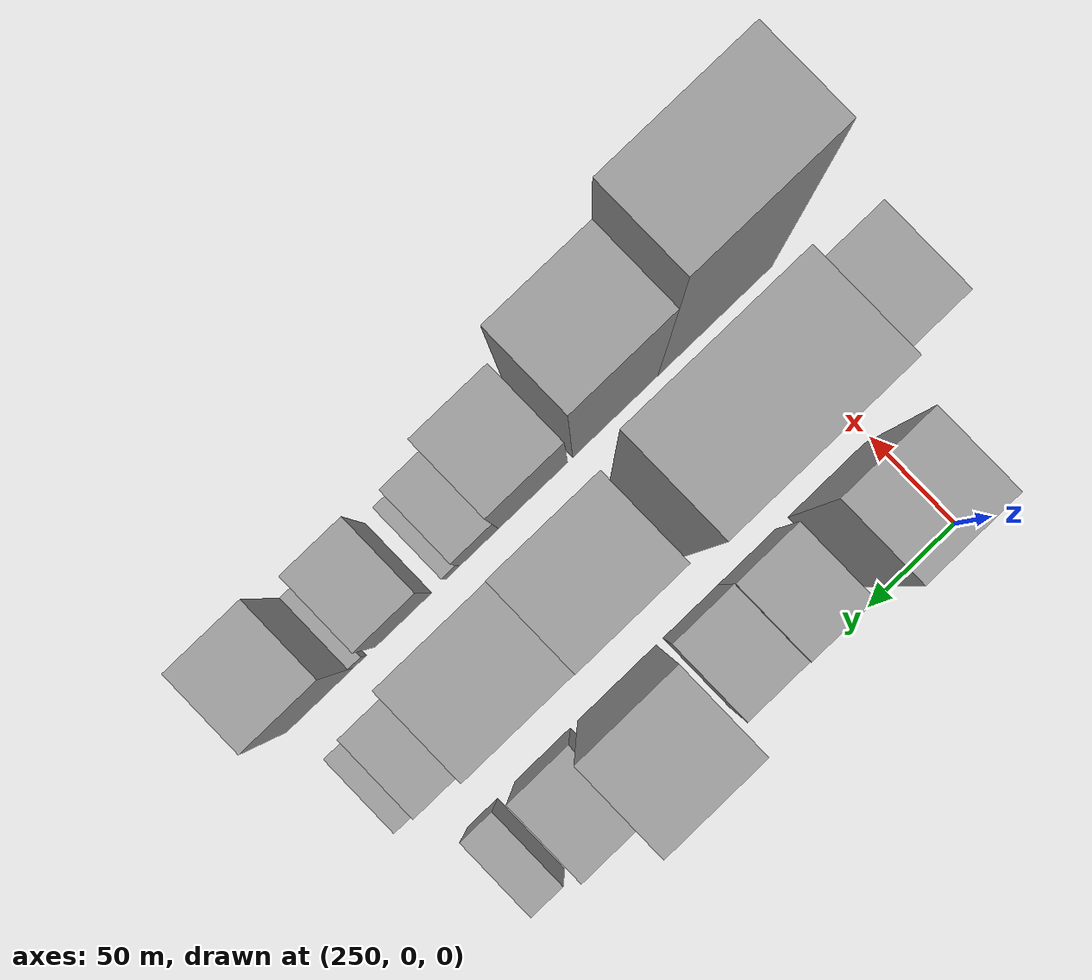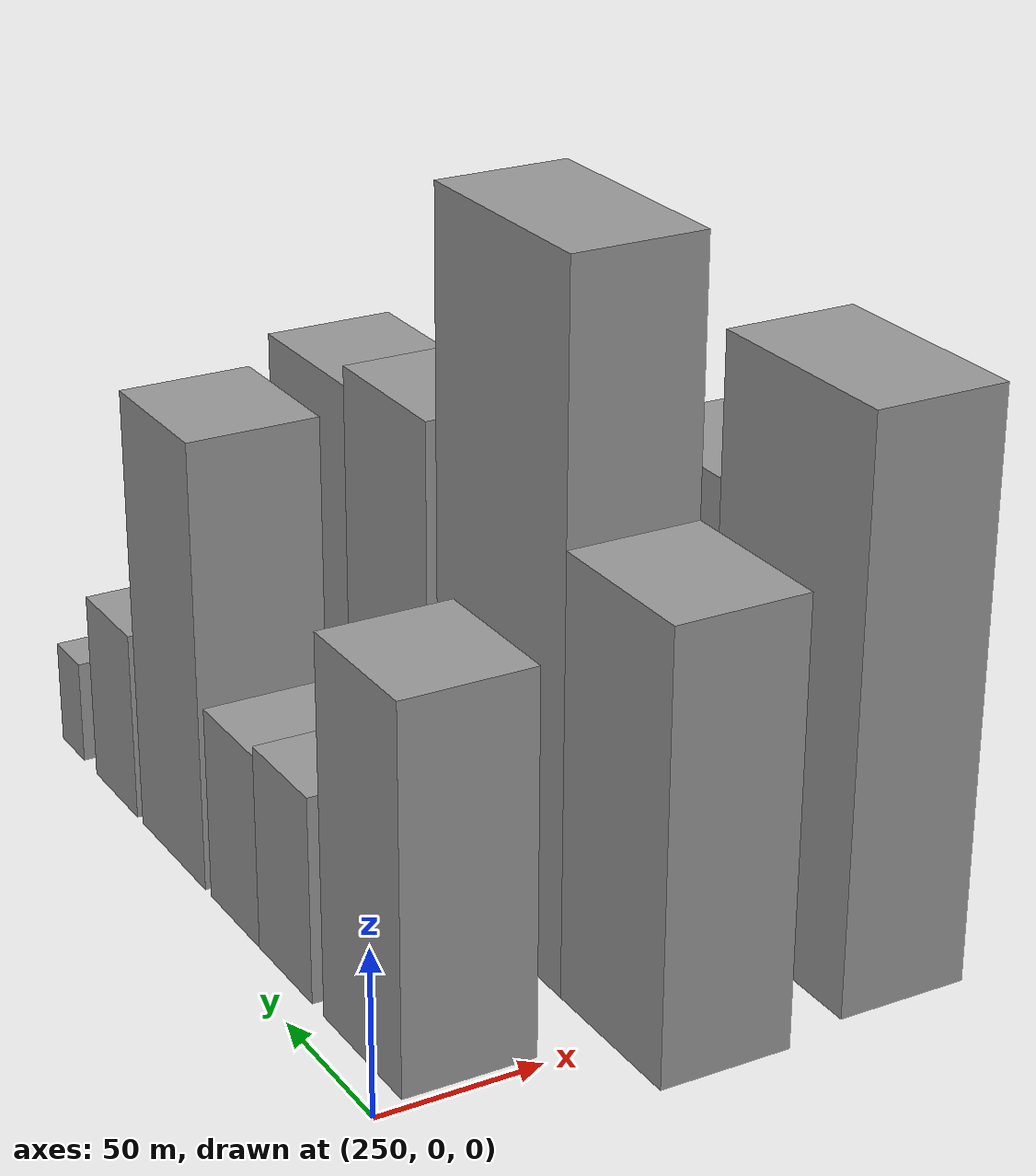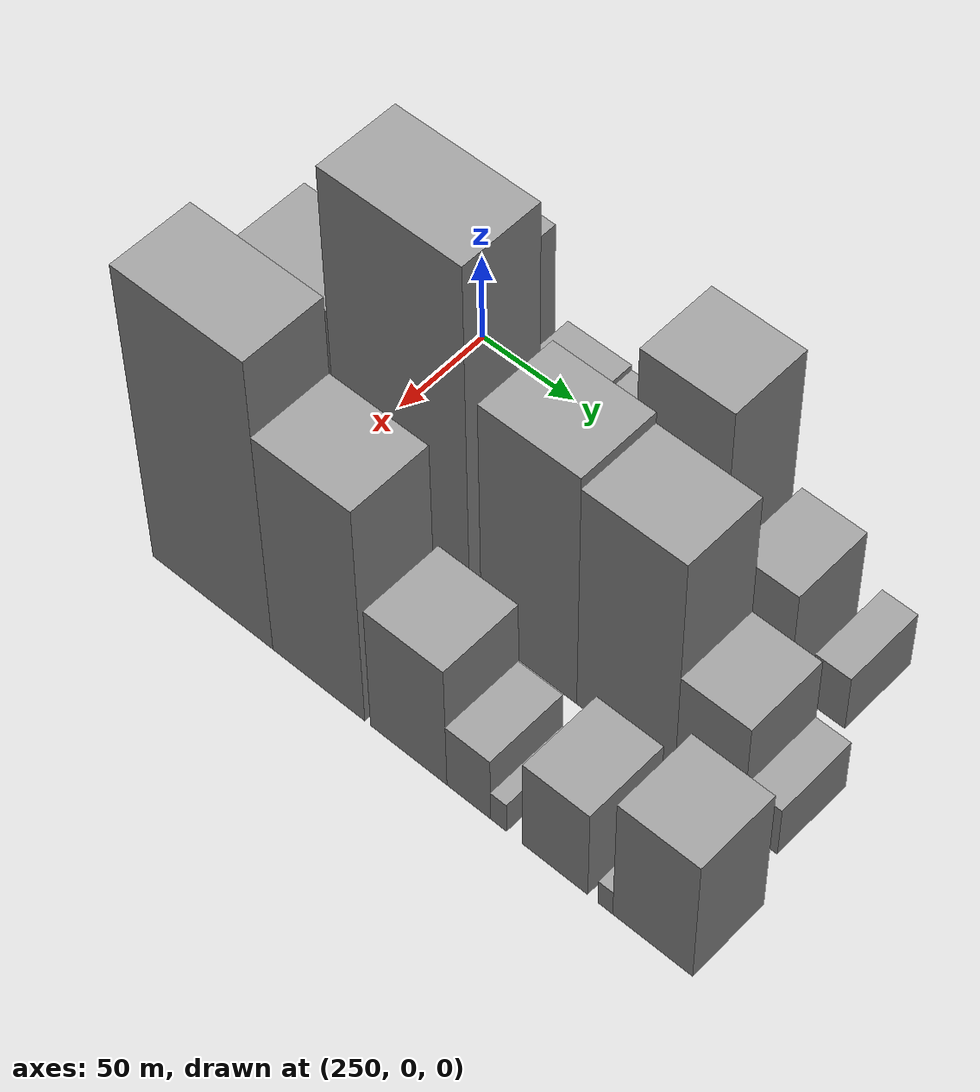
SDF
<sdf version="1.6">
 <world name="default">
  <model name="building_186">
   <static>1</static>
   <pose>280.0000 25.8724 0 0.000000 0.000000 0.000000</pose>
   <link name="link">
    <pose>0 0 57.00 0 0 0</pose>
    <collision name="collision"><geometry><box><size>40.0000 44.7221 114.0000</size></box></geometry></collision>
    <visual name="visual">
     <cast_shadows>0</cast_shadows>
     <geometry><box><size>40.0000 44.7221 114.0000</size></box></geometry>
     <material>
      <script>
       <uri>model://grey_wall/materials/scripts</uri>
       <uri>model://grey_wall/materials/textures</uri>
       <name>vrc/grey_wall</name>
      </script>
     </material>
    </visual>
   </link>
  </model>
  <model name="building_187">
   <static>1</static>
   <pose>280.0000 71.8107 0 0.000000 0.000000 0.000000</pose>
   <link name="link">
    <pose>0 0 31.50 0 0 0</pose>
    <collision name="collision"><geometry><box><size>40.0000 33.1545 63.0000</size></box></geometry></collision>
    <visual name="visual">
     <cast_shadows>0</cast_shadows>
     <geometry><box><size>40.0000 33.1545 63.0000</size></box></geometry>
     <material>
      <script>
       <uri>model://grey_wall/materials/scripts</uri>
       <uri>model://grey_wall/materials/textures</uri>
       <name>vrc/grey_wall</name>
      </script>
     </material>
    </visual>
   </link>
  </model>
  <model name="building_188">
   <static>1</static>
   <pose>280.0000 104.4661 0 0.000000 0.000000 0.000000</pose>
   <link name="link">
    <pose>0 0 30.00 0 0 0</pose>
    <collision name="collision"><geometry><box><size>40.0000 32.1562 60.0000</size></box></geometry></collision>
    <visual name="visual">
     <cast_shadows>0</cast_shadows>
     <geometry><box><size>40.0000 32.1562 60.0000</size></box></geometry>
     <material>
      <script>
       <uri>model://grey_wall/materials/scripts</uri>
       <uri>model://grey_wall/materials/textures</uri>
       <name>vrc/grey_wall</name>
      </script>
     </material>
    </visual>
   </link>
  </model>
  <model name="building_189">
   <static>1</static>
   <pose>280.0000 147.1426 0 0.000000 0.000000 0.000000</pose>
   <link name="link">
    <pose>0 0 69.00 0 0 0</pose>
    <collision name="collision"><geometry><box><size>40.0000 45.1970 138.0000</size></box></geometry></collision>
    <visual name="visual">
     <cast_shadows>0</cast_shadows>
     <geometry><box><size>40.0000 45.1970 138.0000</size></box></geometry>
     <material>
      <script>
       <uri>model://grey_wall/materials/scripts</uri>
       <uri>model://grey_wall/materials/textures</uri>
       <name>vrc/grey_wall</name>
      </script>
     </material>
    </visual>
   </link>
  </model>
  <model name="building_190">
   <static>1</static>
   <pose>280.0000 189.6095 0 0.000000 0.000000 0.000000</pose>
   <link name="link">
    <pose>0 0 30.00 0 0 0</pose>
    <collision name="collision"><geometry><box><size>40.0000 31.7368 60.0000</size></box></geometry></collision>
    <visual name="visual">
     <cast_shadows>0</cast_shadows>
     <geometry><box><size>40.0000 31.7368 60.0000</size></box></geometry>
     <material>
      <script>
       <uri>model://grey_wall/materials/scripts</uri>
       <uri>model://grey_wall/materials/textures</uri>
       <name>vrc/grey_wall</name>
      </script>
     </material>
    </visual>
   </link>
  </model>
  <model name="building_191">
   <static>1</static>
   <pose>280.0000 224.1270 0 0.000000 0.000000 0.000000</pose>
   <link name="link">
    <pose>0 0 16.50 0 0 0</pose>
    <collision name="collision"><geometry><box><size>40.0000 17.2983 33.0000</size></box></geometry></collision>
    <visual name="visual">
     <cast_shadows>0</cast_shadows>
     <geometry><box><size>40.0000 17.2983 33.0000</size></box></geometry>
     <material>
      <script>
       <uri>model://grey_wall/materials/scripts</uri>
       <uri>model://grey_wall/materials/textures</uri>
       <name>vrc/grey_wall</name>
      </script>
     </material>
    </visual>
   </link>
  </model>
  <model name="building_242">
   <static>1</static>
   <pose>340.0000 0.1352 0 0.000000 0.000000 0.000000</pose>
   <link name="link">
    <pose>0 0 66.00 0 0 0</pose>
    <collision name="collision"><geometry><box><size>40.0000 50.5979 132.0000</size></box></geometry></collision>
    <visual name="visual">
     <cast_shadows>0</cast_shadows>
     <geometry><box><size>40.0000 50.5979 132.0000</size></box></geometry>
     <material>
      <script>
       <uri>model://grey_wall/materials/scripts</uri>
       <uri>model://grey_wall/materials/textures</uri>
       <name>vrc/grey_wall</name>
      </script>
     </material>
    </visual>
   </link>
  </model>
  <model name="building_243">
   <static>1</static>
   <pose>340.0000 59.9697 0 0.000000 0.000000 0.000000</pose>
   <link name="link">
    <pose>0 0 105.00 0 0 0</pose>
    <collision name="collision"><geometry><box><size>40.0000 69.0711 210.0000</size></box></geometry></collision>
    <visual name="visual">
     <cast_shadows>0</cast_shadows>
     <geometry><box><size>40.0000 69.0711 210.0000</size></box></geometry>
     <material>
      <script>
       <uri>model://grey_wall/materials/scripts</uri>
       <uri>model://grey_wall/materials/textures</uri>
       <name>vrc/grey_wall</name>
      </script>
     </material>
    </visual>
   </link>
  </model>
  <model name="building_244">
   <static>1</static>
   <pose>340.0000 125.1820 0 0.000000 0.000000 0.000000</pose>
   <link name="link">
    <pose>0 0 70.50 0 0 0</pose>
    <collision name="collision"><geometry><box><size>40.0000 49.3534 141.0000</size></box></geometry></collision>
    <visual name="visual">
     <cast_shadows>0</cast_shadows>
     <geometry><box><size>40.0000 49.3534 141.0000</size></box></geometry>
     <material>
      <script>
       <uri>model://grey_wall/materials/scripts</uri>
       <uri>model://grey_wall/materials/textures</uri>
       <name>vrc/grey_wall</name>
      </script>
     </material>
    </visual>
   </link>
  </model>
  <model name="building_245">
   <static>1</static>
   <pose>340.0000 174.4990 0 0.000000 0.000000 0.000000</pose>
   <link name="link">
    <pose>0 0 67.50 0 0 0</pose>
    <collision name="collision"><geometry><box><size>40.0000 49.2808 135.0000</size></box></geometry></collision>
    <visual name="visual">
     <cast_shadows>0</cast_shadows>
     <geometry><box><size>40.0000 49.2808 135.0000</size></box></geometry>
     <material>
      <script>
       <uri>model://grey_wall/materials/scripts</uri>
       <uri>model://grey_wall/materials/textures</uri>
       <name>vrc/grey_wall</name>
      </script>
     </material>
    </visual>
   </link>
  </model>
  <model name="building_246">
   <static>1</static>
   <pose>340.0000 215.7861 0 0.000000 0.000000 0.000000</pose>
   <link name="link">
    <pose>0 0 33.00 0 0 0</pose>
    <collision name="collision"><geometry><box><size>40.0000 33.2933 66.0000</size></box></geometry></collision>
    <visual name="visual">
     <cast_shadows>0</cast_shadows>
     <geometry><box><size>40.0000 33.2933 66.0000</size></box></geometry>
     <material>
      <script>
       <uri>model://grey_wall/materials/scripts</uri>
       <uri>model://grey_wall/materials/textures</uri>
       <name>vrc/grey_wall</name>
      </script>
     </material>
    </visual>
   </link>
  </model>
  <model name="building_247">
   <static>1</static>
   <pose>340.0000 240.8861 0 0.000000 0.000000 0.000000</pose>
   <link name="link">
    <pose>0 0 15.00 0 0 0</pose>
    <collision name="collision"><geometry><box><size>40.0000 16.9068 30.0000</size></box></geometry></collision>
    <visual name="visual">
     <cast_shadows>0</cast_shadows>
     <geometry><box><size>40.0000 16.9068 30.0000</size></box></geometry>
     <material>
      <script>
       <uri>model://grey_wall/materials/scripts</uri>
       <uri>model://grey_wall/materials/textures</uri>
       <name>vrc/grey_wall</name>
      </script>
     </material>
    </visual>
   </link>
  </model>
  <model name="building_295">
   <static>1</static>
   <pose>400.0000 13.0426 0 0.000000 0.000000 0.000000</pose>
   <link name="link">
    <pose>0 0 87.00 0 0 0</pose>
    <collision name="collision"><geometry><box><size>40.0000 66.4451 174.0000</size></box></geometry></collision>
    <visual name="visual">
     <cast_shadows>0</cast_shadows>
     <geometry><box><size>40.0000 66.4451 174.0000</size></box></geometry>
     <material>
      <script>
       <uri>model://grey_wall/materials/scripts</uri>
       <uri>model://grey_wall/materials/textures</uri>
       <name>vrc/grey_wall</name>
      </script>
     </material>
    </visual>
   </link>
  </model>
  <model name="building_296">
   <static>1</static>
   <pose>400.0000 70.8747 0 0.000000 0.000000 0.000000</pose>
   <link name="link">
    <pose>0 0 66.00 0 0 0</pose>
    <collision name="collision"><geometry><box><size>40.0000 49.2193 132.0000</size></box></geometry></collision>
    <visual name="visual">
     <cast_shadows>0</cast_shadows>
     <geometry><box><size>40.0000 49.2193 132.0000</size></box></geometry>
     <material>
      <script>
       <uri>model://grey_wall/materials/scripts</uri>
       <uri>model://grey_wall/materials/textures</uri>
       <name>vrc/grey_wall</name>
      </script>
     </material>
    </visual>
   </link>
  </model>
  <model name="building_297">
   <static>1</static>
   <pose>400.0000 118.3382 0 0.000000 0.000000 0.000000</pose>
   <link name="link">
    <pose>0 0 37.50 0 0 0</pose>
    <collision name="collision"><geometry><box><size>40.0000 39.7076 75.0000</size></box></geometry></collision>
    <visual name="visual">
     <cast_shadows>0</cast_shadows>
     <geometry><box><size>40.0000 39.7076 75.0000</size></box></geometry>
     <material>
      <script>
       <uri>model://grey_wall/materials/scripts</uri>
       <uri>model://grey_wall/materials/textures</uri>
       <name>vrc/grey_wall</name>
      </script>
     </material>
    </visual>
   </link>
  </model>
  <model name="building_298">
   <static>1</static>
   <pose>400.0000 149.3434 0 0.000000 0.000000 0.000000</pose>
   <link name="link">
    <pose>0 0 19.50 0 0 0</pose>
    <collision name="collision"><geometry><box><size>40.0000 22.3028 39.0000</size></box></geometry></collision>
    <visual name="visual">
     <cast_shadows>0</cast_shadows>
     <geometry><box><size>40.0000 22.3028 39.0000</size></box></geometry>
     <material>
      <script>
       <uri>model://grey_wall/materials/scripts</uri>
       <uri>model://grey_wall/materials/textures</uri>
       <name>vrc/grey_wall</name>
      </script>
     </material>
    </visual>
   </link>
  </model>
  <model name="building_299">
   <static>1</static>
   <pose>400.0000 164.5375 0 0.000000 0.000000 0.000000</pose>
   <link name="link">
    <pose>0 0 9.00 0 0 0</pose>
    <collision name="collision"><geometry><box><size>40.0000 8.0854 18.0000</size></box></geometry></collision>
    <visual name="visual">
     <cast_shadows>0</cast_shadows>
     <geometry><box><size>40.0000 8.0854 18.0000</size></box></geometry>
     <material>
      <script>
       <uri>model://grey_wall/materials/scripts</uri>
       <uri>model://grey_wall/materials/textures</uri>
       <name>vrc/grey_wall</name>
      </script>
     </material>
    </visual>
   </link>
  </model>
  <model name="building_300">
   <static>1</static>
   <pose>400.0000 192.7102 0 0.000000 0.000000 0.000000</pose>
   <link name="link">
    <pose>0 0 27.00 0 0 0</pose>
    <collision name="collision"><geometry><box><size>40.0000 32.2601 54.0000</size></box></geometry></collision>
    <visual name="visual">
     <cast_shadows>0</cast_shadows>
     <geometry><box><size>40.0000 32.2601 54.0000</size></box></geometry>
     <material>
      <script>
       <uri>model://grey_wall/materials/scripts</uri>
       <uri>model://grey_wall/materials/textures</uri>
       <name>vrc/grey_wall</name>
      </script>
     </material>
    </visual>
   </link>
  </model>
  <model name="building_301">
   <static>1</static>
   <pose>400.0000 217.4317 0 0.000000 0.000000 0.000000</pose>
   <link name="link">
    <pose>0 0 7.50 0 0 0</pose>
    <collision name="collision"><geometry><box><size>40.0000 7.1828 15.0000</size></box></geometry></collision>
    <visual name="visual">
     <cast_shadows>0</cast_shadows>
     <geometry><box><size>40.0000 7.1828 15.0000</size></box></geometry>
     <material>
      <script>
       <uri>model://grey_wall/materials/scripts</uri>
       <uri>model://grey_wall/materials/textures</uri>
       <name>vrc/grey_wall</name>
      </script>
     </material>
    </visual>
   </link>
  </model>
  <model name="building_302">
   <static>1</static>
   <pose>400.0000 240.2524 0 0.000000 0.000000 0.000000</pose>
   <link name="link">
    <pose>0 0 37.50 0 0 0</pose>
    <collision name="collision"><geometry><box><size>40.0000 38.4585 75.0000</size></box></geometry></collision>
    <visual name="visual">
     <cast_shadows>0</cast_shadows>
     <geometry><box><size>40.0000 38.4585 75.0000</size></box></geometry>
     <material>
      <script>
       <uri>model://grey_wall/materials/scripts</uri>
       <uri>model://grey_wall/materials/textures</uri>
       <name>vrc/grey_wall</name>
      </script>
     </material>
    </visual>
   </link>
  </model>
 </world>
</sdf>
